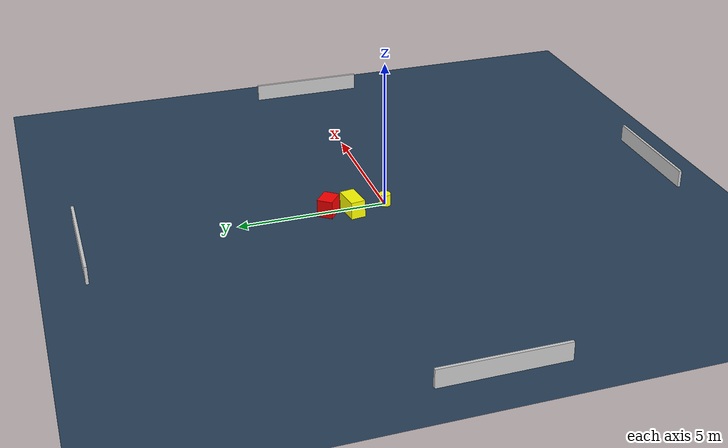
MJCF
<?xml version="1.0" ?>
<mujoco model="generated_environment">
  <option timestep="0.01" integrator="RK4" cone="elliptic"/>
  <default>
    <geom density="1"/>
  </default>
  <asset>
    <texture builtin="gradient" height="3072" name="skybox" rgb1="0.3 0.5 0.7" rgb2="0 0 0" type="skybox" width="512"/>
    <texture builtin="checker" height="300" name="groundplane" rgb1="0.2 0.3 0.4" rgb2="0.1 0.2 0.3" type="2d" width="300"/>
    <material name="groundplane" reflectance="0.2" texrepeat="5 5" texture="groundplane"/>
  </asset>
  <worldbody>
    <light dir="0 0 -1" directional="true" pos="0 0 1.5"/>
    <geom condim="3" friction="0.5 0.005 0.001" material="groundplane" name="floor" pos="0 0 0" size="0 0 0.05" type="plane"/>
    <body name="walls">
      <geom name="wall_1" condim="4" pos="-10.0 0.0 0.3" rgba="0.800000011920929 0.800000011920929 0.800000011920929 1.0" size="0.05 2.0 0.3" type="box"/>
      <geom name="wall_2" condim="4" pos="10.0 0.0 0.3" rgba="0.800000011920929 0.800000011920929 0.800000011920929 1.0" size="0.05 2.0 0.3" type="box"/>
      <geom name="wall_3" condim="4" pos="0.0 -10.0 0.3" rgba="0.800000011920929 0.800000011920929 0.800000011920929 1.0" size="2.0 0.05 0.3" type="box"/>
      <geom name="wall_4" condim="4" pos="0.0 10.0 0.3" rgba="0.800000011920929 0.800000011920929 0.800000011920929 1.0" size="2.0 0.05 0.3" type="box"/>
    </body>
    <body name="robot">
      <joint name="joint_x" type="slide" pos="0 0 0" axis="1 0 0"/>
      <joint name="joint_y" type="slide" pos="0 0 0" axis="0 1 0"/>
      <geom name="robot" type="cylinder" pos="0.0 0.0 0.2" size="0.2 0.2 0.0" mass="5.0" friction="1.0 0.005 0.0001" condim="4" rgba="1.0 1.0 0.0 1.0"/>
    </body>
    <body name="obstacle_1_movable">
      <geom name="obstacle_1_movable" condim="4" pos="-0.19842312986062258 1.1913230224504427 0.3" euler="0 0 8.214822743280958" friction="0.0 0.005 0.001" rgba="1.0 1.0 0.0 1.0" size="0.45455666959420693 0.24970859356259695 0.3" type="box" mass="0.1"/>
      <joint type="free"/>
    </body>
    <body name="obstacle_2_static">
      <geom name="obstacle_2_static" condim="4" pos="-0.015642335456924197 1.9681211177514668 0.3" euler="0 0 142.21115534260917" friction="0.0 0.005 0.001" rgba="1.0 0.0 0.0 1.0" size="0.3314028066787973 0.26318808280715206 0.3" type="box"/>
    </body>
  </worldbody>
  <actuator>
    <motor name="actuator_x" joint="joint_x" gear="1" ctrlrange="-1 1"/>
    <motor name="actuator_y" joint="joint_y" gear="1" ctrlrange="-1 1"/>
  </actuator>
</mujoco>
